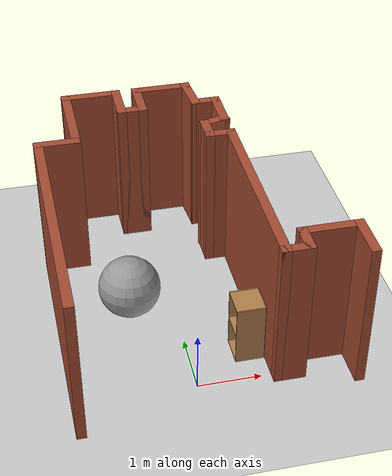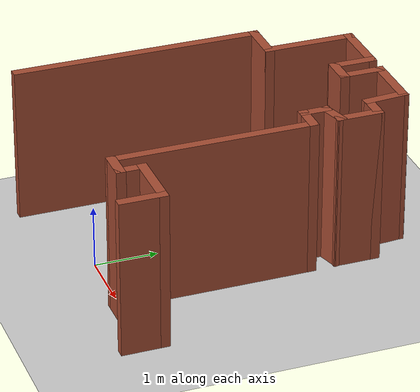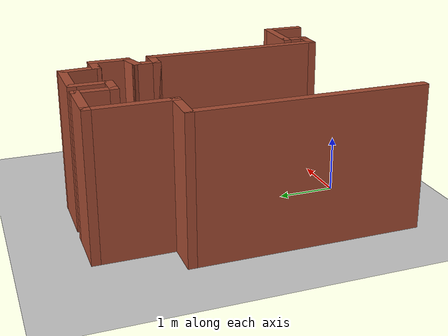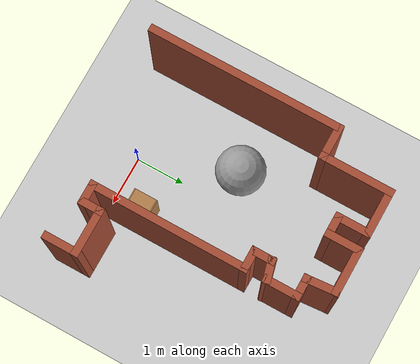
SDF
<sdf version="1.6">
 <world name="default">
  <model name="ground_plane">
   <static>1</static>
   <link name="link">
    <collision name="collision">
     <geometry><plane><normal>0 0 1</normal><size>100 100</size></plane></geometry>
     <surface><friction><ode><mu>100</mu><mu2>50</mu2></ode></friction></surface>
    </collision>
    <visual name="visual">
     <cast_shadows>0</cast_shadows>
     <geometry><plane><normal>0 0 1</normal><size>100 100</size></plane></geometry>
     <material>
      <script><uri>file://media/materials/scripts/gazebo.material</uri><name>Gazebo/Grey</name></script>
     </material>
    </visual>
   </link>
  </model>
  <model name="map_40">
   <link name="Wall_0">
    <pose>-1 5.72202 0 0 -0 3.14159</pose>
    <visual name="Wall_0_Visual">
     <pose>0 0 1.25 0 -0 0</pose>
     <geometry><box><size>1 0.15 2.5</size></box></geometry>
     <material>
      <script><uri>file://media/materials/scripts/gazebo.material</uri><name>Gazebo/Bricks</name></script>
      <ambient>1 1 1 1</ambient>
      <shader type="pixel"/>
     </material>
     <meta><layer>0</layer></meta>
    </visual>
    <collision name="Wall_0_Collision">
     <pose>0 0 1.25 0 -0 0</pose>
     <geometry><box><size>1 0.15 2.5</size></box></geometry>
     <surface>
      <friction>
       <ode><mu>1</mu><mu2>1</mu2><fdir1>0 0 0</fdir1><slip1>0</slip1><slip2>0</slip2></ode>
       <torsional>
        <coefficient>1</coefficient>
        <patch_radius>0</patch_radius>
        <surface_radius>0</surface_radius>
        <use_patch_radius>1</use_patch_radius>
        <ode><slip>0</slip></ode>
       </torsional>
      </friction>
      <bounce><restitution_coefficient>0</restitution_coefficient><threshold>1e+06</threshold></bounce>
      <contact>
       <collide_without_contact>0</collide_without_contact>
       <collide_without_contact_bitmask>1</collide_without_contact_bitmask>
       <collide_bitmask>1</collide_bitmask>
       <ode>
        <soft_cfm>0</soft_cfm>
        <soft_erp>0.2</soft_erp>
        <kp>1e+13</kp>
        <kd>1</kd>
        <max_vel>0.01</max_vel>
        <min_depth>0</min_depth>
       </ode>
       <bullet>
        <split_impulse>1</split_impulse>
        <split_impulse_penetration_threshold>-0.01</split_impulse_penetration_threshold>
        <soft_cfm>0</soft_cfm>
        <soft_erp>0.2</soft_erp>
        <kp>1e+13</kp>
        <kd>1</kd>
       </bullet>
      </contact>
     </surface>
    </collision>
   </link>
   <link name="Wall_10">
    <pose>-2.2 5.72202 0 0 -0 3.14159</pose>
    <visual name="Wall_10_Visual">
     <pose>0 0 1.25 0 -0 0</pose>
     <geometry><box><size>1 0.15 2.5</size></box></geometry>
     <material>
      <script><uri>file://media/materials/scripts/gazebo.material</uri><name>Gazebo/Bricks</name></script>
      <ambient>1 1 1 1</ambient>
      <shader type="pixel"/>
     </material>
     <meta><layer>0</layer></meta>
    </visual>
    <collision name="Wall_10_Collision">
     <pose>0 0 1.25 0 -0 0</pose>
     <geometry><box><size>1 0.15 2.5</size></box></geometry>
     <surface>
      <friction>
       <ode><mu>1</mu><mu2>1</mu2><fdir1>0 0 0</fdir1><slip1>0</slip1><slip2>0</slip2></ode>
       <torsional>
        <coefficient>1</coefficient>
        <patch_radius>0</patch_radius>
        <surface_radius>0</surface_radius>
        <use_patch_radius>1</use_patch_radius>
        <ode><slip>0</slip></ode>
       </torsional>
      </friction>
      <bounce><restitution_coefficient>0</restitution_coefficient><threshold>1e+06</threshold></bounce>
      <contact>
       <collide_without_contact>0</collide_without_contact>
       <collide_without_contact_bitmask>1</collide_without_contact_bitmask>
       <collide_bitmask>1</collide_bitmask>
       <ode>
        <soft_cfm>0</soft_cfm>
        <soft_erp>0.2</soft_erp>
        <kp>1e+13</kp>
        <kd>1</kd>
        <max_vel>0.01</max_vel>
        <min_depth>0</min_depth>
       </ode>
       <bullet>
        <split_impulse>1</split_impulse>
        <split_impulse_penetration_threshold>-0.01</split_impulse_penetration_threshold>
        <soft_cfm>0</soft_cfm>
        <soft_erp>0.2</soft_erp>
        <kp>1e+13</kp>
        <kd>1</kd>
       </bullet>
      </contact>
     </surface>
    </collision>
   </link>
   <link name="Wall_11">
    <pose>-2.625 5.04702 0 0 0 -1.5708</pose>
    <visual name="Wall_11_Visual">
     <pose>0 0 1.25 0 -0 0</pose>
     <geometry><box><size>1.5 0.15 2.5</size></box></geometry>
     <material>
      <script><uri>file://media/materials/scripts/gazebo.material</uri><name>Gazebo/Bricks</name></script>
      <ambient>1 1 1 1</ambient>
      <shader type="pixel"/>
     </material>
     <meta><layer>0</layer></meta>
    </visual>
    <collision name="Wall_11_Collision">
     <pose>0 0 1.25 0 -0 0</pose>
     <geometry><box><size>1.5 0.15 2.5</size></box></geometry>
     <surface>
      <friction>
       <ode><mu>1</mu><mu2>1</mu2><fdir1>0 0 0</fdir1><slip1>0</slip1><slip2>0</slip2></ode>
       <torsional>
        <coefficient>1</coefficient>
        <patch_radius>0</patch_radius>
        <surface_radius>0</surface_radius>
        <use_patch_radius>1</use_patch_radius>
        <ode><slip>0</slip></ode>
       </torsional>
      </friction>
      <bounce><restitution_coefficient>0</restitution_coefficient><threshold>1e+06</threshold></bounce>
      <contact>
       <collide_without_contact>0</collide_without_contact>
       <collide_without_contact_bitmask>1</collide_without_contact_bitmask>
       <collide_bitmask>1</collide_bitmask>
       <ode>
        <soft_cfm>0</soft_cfm>
        <soft_erp>0.2</soft_erp>
        <kp>1e+13</kp>
        <kd>1</kd>
        <max_vel>0.01</max_vel>
        <min_depth>0</min_depth>
       </ode>
       <bullet>
        <split_impulse>1</split_impulse>
        <split_impulse_penetration_threshold>-0.01</split_impulse_penetration_threshold>
        <soft_cfm>0</soft_cfm>
        <soft_erp>0.2</soft_erp>
        <kp>1e+13</kp>
        <kd>1</kd>
       </bullet>
      </contact>
     </surface>
    </collision>
   </link>
   <link name="Wall_12">
    <pose>-2.925 4.37202 0 0 -0 3.14159</pose>
    <visual name="Wall_12_Visual">
     <pose>0 0 1.25 0 -0 0</pose>
     <geometry><box><size>0.75 0.15 2.5</size></box></geometry>
     <material>
      <script><uri>file://media/materials/scripts/gazebo.material</uri><name>Gazebo/Bricks</name></script>
      <ambient>1 1 1 1</ambient>
      <shader type="pixel"/>
     </material>
     <meta><layer>0</layer></meta>
    </visual>
    <collision name="Wall_12_Collision">
     <pose>0 0 1.25 0 -0 0</pose>
     <geometry><box><size>0.75 0.15 2.5</size></box></geometry>
     <surface>
      <friction>
       <ode><mu>1</mu><mu2>1</mu2><fdir1>0 0 0</fdir1><slip1>0</slip1><slip2>0</slip2></ode>
       <torsional>
        <coefficient>1</coefficient>
        <patch_radius>0</patch_radius>
        <surface_radius>0</surface_radius>
        <use_patch_radius>1</use_patch_radius>
        <ode><slip>0</slip></ode>
       </torsional>
      </friction>
      <bounce><restitution_coefficient>0</restitution_coefficient><threshold>1e+06</threshold></bounce>
      <contact>
       <collide_without_contact>0</collide_without_contact>
       <collide_without_contact_bitmask>1</collide_without_contact_bitmask>
       <collide_bitmask>1</collide_bitmask>
       <ode>
        <soft_cfm>0</soft_cfm>
        <soft_erp>0.2</soft_erp>
        <kp>1e+13</kp>
        <kd>1</kd>
        <max_vel>0.01</max_vel>
        <min_depth>0</min_depth>
       </ode>
       <bullet>
        <split_impulse>1</split_impulse>
        <split_impulse_penetration_threshold>-0.01</split_impulse_penetration_threshold>
        <soft_cfm>0</soft_cfm>
        <soft_erp>0.2</soft_erp>
        <kp>1e+13</kp>
        <kd>1</kd>
       </bullet>
      </contact>
     </surface>
    </collision>
   </link>
   <link name="Wall_13">
    <pose>-3.225 2.44702 0 0 0 -1.5708</pose>
    <visual name="Wall_13_Visual">
     <pose>0 0 1.25 0 -0 0</pose>
     <geometry><box><size>4 0.15 2.5</size></box></geometry>
     <material>
      <script><uri>file://media/materials/scripts/gazebo.material</uri><name>Gazebo/Bricks</name></script>
      <ambient>1 1 1 1</ambient>
      <shader type="pixel"/>
     </material>
     <meta><layer>0</layer></meta>
    </visual>
    <collision name="Wall_13_Collision">
     <pose>0 0 1.25 0 -0 0</pose>
     <geometry><box><size>4 0.15 2.5</size></box></geometry>
     <surface>
      <friction>
       <ode><mu>1</mu><mu2>1</mu2><fdir1>0 0 0</fdir1><slip1>0</slip1><slip2>0</slip2></ode>
       <torsional>
        <coefficient>1</coefficient>
        <patch_radius>0</patch_radius>
        <surface_radius>0</surface_radius>
        <use_patch_radius>1</use_patch_radius>
        <ode><slip>0</slip></ode>
       </torsional>
      </friction>
      <bounce><restitution_coefficient>0</restitution_coefficient><threshold>1e+06</threshold></bounce>
      <contact>
       <collide_without_contact>0</collide_without_contact>
       <collide_without_contact_bitmask>1</collide_without_contact_bitmask>
       <collide_bitmask>1</collide_bitmask>
       <ode>
        <soft_cfm>0</soft_cfm>
        <soft_erp>0.2</soft_erp>
        <kp>1e+13</kp>
        <kd>1</kd>
        <max_vel>0.01</max_vel>
        <min_depth>0</min_depth>
       </ode>
       <bullet>
        <split_impulse>1</split_impulse>
        <split_impulse_penetration_threshold>-0.01</split_impulse_penetration_threshold>
        <soft_cfm>0</soft_cfm>
        <soft_erp>0.2</soft_erp>
        <kp>1e+13</kp>
        <kd>1</kd>
       </bullet>
      </contact>
     </surface>
    </collision>
   </link>
   <link name="Wall_3">
    <pose>-1.425 5.42202 0 0 0 -1.5708</pose>
    <visual name="Wall_3_Visual">
     <pose>0 0 1.25 0 -0 0</pose>
     <geometry><box><size>0.75 0.15 2.5</size></box></geometry>
     <material>
      <script><uri>file://media/materials/scripts/gazebo.material</uri><name>Gazebo/Bricks</name></script>
      <ambient>1 1 1 1</ambient>
      <shader type="pixel"/>
     </material>
     <meta><layer>0</layer></meta>
    </visual>
    <collision name="Wall_3_Collision">
     <pose>0 0 1.25 0 -0 0</pose>
     <geometry><box><size>0.75 0.15 2.5</size></box></geometry>
     <surface>
      <friction>
       <ode><mu>1</mu><mu2>1</mu2><fdir1>0 0 0</fdir1><slip1>0</slip1><slip2>0</slip2></ode>
       <torsional>
        <coefficient>1</coefficient>
        <patch_radius>0</patch_radius>
        <surface_radius>0</surface_radius>
        <use_patch_radius>1</use_patch_radius>
        <ode><slip>0</slip></ode>
       </torsional>
      </friction>
      <bounce><restitution_coefficient>0</restitution_coefficient><threshold>1e+06</threshold></bounce>
      <contact>
       <collide_without_contact>0</collide_without_contact>
       <collide_without_contact_bitmask>1</collide_without_contact_bitmask>
       <collide_bitmask>1</collide_bitmask>
       <ode>
        <soft_cfm>0</soft_cfm>
        <soft_erp>0.2</soft_erp>
        <kp>1e+13</kp>
        <kd>1</kd>
        <max_vel>0.01</max_vel>
        <min_depth>0</min_depth>
       </ode>
       <bullet>
        <split_impulse>1</split_impulse>
        <split_impulse_penetration_threshold>-0.01</split_impulse_penetration_threshold>
        <soft_cfm>0</soft_cfm>
        <soft_erp>0.2</soft_erp>
        <kp>1e+13</kp>
        <kd>1</kd>
       </bullet>
      </contact>
     </surface>
    </collision>
   </link>
   <link name="Wall_4">
    <pose>-1.6 5.12202 0 0 -0 3.14159</pose>
    <visual name="Wall_4_Visual">
     <pose>0 0 1.25 0 -0 0</pose>
     <geometry><box><size>0.5 0.15 2.5</size></box></geometry>
     <material>
      <script><uri>file://media/materials/scripts/gazebo.material</uri><name>Gazebo/Bricks</name></script>
      <ambient>1 1 1 1</ambient>
      <shader type="pixel"/>
     </material>
     <meta><layer>0</layer></meta>
    </visual>
    <collision name="Wall_4_Collision">
     <pose>0 0 1.25 0 -0 0</pose>
     <geometry><box><size>0.5 0.15 2.5</size></box></geometry>
     <surface>
      <friction>
       <ode><mu>1</mu><mu2>1</mu2><fdir1>0 0 0</fdir1><slip1>0</slip1><slip2>0</slip2></ode>
       <torsional>
        <coefficient>1</coefficient>
        <patch_radius>0</patch_radius>
        <surface_radius>0</surface_radius>
        <use_patch_radius>1</use_patch_radius>
        <ode><slip>0</slip></ode>
       </torsional>
      </friction>
      <bounce><restitution_coefficient>0</restitution_coefficient><threshold>1e+06</threshold></bounce>
      <contact>
       <collide_without_contact>0</collide_without_contact>
       <collide_without_contact_bitmask>1</collide_without_contact_bitmask>
       <collide_bitmask>1</collide_bitmask>
       <ode>
        <soft_cfm>0</soft_cfm>
        <soft_erp>0.2</soft_erp>
        <kp>1e+13</kp>
        <kd>1</kd>
        <max_vel>0.01</max_vel>
        <min_depth>0</min_depth>
       </ode>
       <bullet>
        <split_impulse>1</split_impulse>
        <split_impulse_penetration_threshold>-0.01</split_impulse_penetration_threshold>
        <soft_cfm>0</soft_cfm>
        <soft_erp>0.2</soft_erp>
        <kp>1e+13</kp>
        <kd>1</kd>
       </bullet>
      </contact>
     </surface>
    </collision>
   </link>
   <link name="Wall_56">
    <pose>1.03441 1.0601 0 0 -0 1.5708</pose>
    <visual name="Wall_56_Visual">
     <pose>0 0 1.25 0 -0 0</pose>
     <geometry><box><size>0.75 0.15 2.5</size></box></geometry>
     <material>
      <script><uri>file://media/materials/scripts/gazebo.material</uri><name>Gazebo/Bricks</name></script>
      <ambient>1 1 1 1</ambient>
      <shader type="pixel"/>
     </material>
     <meta><layer>0</layer></meta>
    </visual>
    <collision name="Wall_56_Collision">
     <pose>0 0 1.25 0 -0 0</pose>
     <geometry><box><size>0.75 0.15 2.5</size></box></geometry>
     <surface>
      <friction>
       <ode><mu>1</mu><mu2>1</mu2><fdir1>0 0 0</fdir1><slip1>0</slip1><slip2>0</slip2></ode>
       <torsional>
        <coefficient>1</coefficient>
        <patch_radius>0</patch_radius>
        <surface_radius>0</surface_radius>
        <use_patch_radius>1</use_patch_radius>
        <ode><slip>0</slip></ode>
       </torsional>
      </friction>
      <bounce><restitution_coefficient>0</restitution_coefficient><threshold>1e+06</threshold></bounce>
      <contact>
       <collide_without_contact>0</collide_without_contact>
       <collide_without_contact_bitmask>1</collide_without_contact_bitmask>
       <collide_bitmask>1</collide_bitmask>
       <ode>
        <soft_cfm>0</soft_cfm>
        <soft_erp>0.2</soft_erp>
        <kp>1e+13</kp>
        <kd>1</kd>
        <max_vel>0.01</max_vel>
        <min_depth>0</min_depth>
       </ode>
       <bullet>
        <split_impulse>1</split_impulse>
        <split_impulse_penetration_threshold>-0.01</split_impulse_penetration_threshold>
        <soft_cfm>0</soft_cfm>
        <soft_erp>0.2</soft_erp>
        <kp>1e+13</kp>
        <kd>1</kd>
       </bullet>
      </contact>
     </surface>
    </collision>
   </link>
   <link name="Wall_57">
    <pose>0.609413 1.3601 0 0 -0 3.14159</pose>
    <visual name="Wall_57_Visual">
     <pose>0 0 1.25 0 -0 0</pose>
     <geometry><box><size>1 0.15 2.5</size></box></geometry>
     <material>
      <script><uri>file://media/materials/scripts/gazebo.material</uri><name>Gazebo/Bricks</name></script>
      <ambient>1 1 1 1</ambient>
      <shader type="pixel"/>
     </material>
     <meta><layer>0</layer></meta>
    </visual>
    <collision name="Wall_57_Collision">
     <pose>0 0 1.25 0 -0 0</pose>
     <geometry><box><size>1 0.15 2.5</size></box></geometry>
     <surface>
      <friction>
       <ode><mu>1</mu><mu2>1</mu2><fdir1>0 0 0</fdir1><slip1>0</slip1><slip2>0</slip2></ode>
       <torsional>
        <coefficient>1</coefficient>
        <patch_radius>0</patch_radius>
        <surface_radius>0</surface_radius>
        <use_patch_radius>1</use_patch_radius>
        <ode><slip>0</slip></ode>
       </torsional>
      </friction>
      <bounce><restitution_coefficient>0</restitution_coefficient><threshold>1e+06</threshold></bounce>
      <contact>
       <collide_without_contact>0</collide_without_contact>
       <collide_without_contact_bitmask>1</collide_without_contact_bitmask>
       <collide_bitmask>1</collide_bitmask>
       <ode>
        <soft_cfm>0</soft_cfm>
        <soft_erp>0.2</soft_erp>
        <kp>1e+13</kp>
        <kd>1</kd>
        <max_vel>0.01</max_vel>
        <min_depth>0</min_depth>
       </ode>
       <bullet>
        <split_impulse>1</split_impulse>
        <split_impulse_penetration_threshold>-0.01</split_impulse_penetration_threshold>
        <soft_cfm>0</soft_cfm>
        <soft_erp>0.2</soft_erp>
        <kp>1e+13</kp>
        <kd>1</kd>
       </bullet>
      </contact>
     </surface>
    </collision>
   </link>
   <link name="Wall_58">
    <pose>0.184413 1.1851 0 0 0 -1.5708</pose>
    <visual name="Wall_58_Visual">
     <pose>0 0 1.25 0 -0 0</pose>
     <geometry><box><size>0.5 0.15 2.5</size></box></geometry>
     <material>
      <script><uri>file://media/materials/scripts/gazebo.material</uri><name>Gazebo/Bricks</name></script>
      <ambient>1 1 1 1</ambient>
      <shader type="pixel"/>
     </material>
     <meta><layer>0</layer></meta>
    </visual>
    <collision name="Wall_58_Collision">
     <pose>0 0 1.25 0 -0 0</pose>
     <geometry><box><size>0.5 0.15 2.5</size></box></geometry>
     <surface>
      <friction>
       <ode><mu>1</mu><mu2>1</mu2><fdir1>0 0 0</fdir1><slip1>0</slip1><slip2>0</slip2></ode>
       <torsional>
        <coefficient>1</coefficient>
        <patch_radius>0</patch_radius>
        <surface_radius>0</surface_radius>
        <use_patch_radius>1</use_patch_radius>
        <ode><slip>0</slip></ode>
       </torsional>
      </friction>
      <bounce><restitution_coefficient>0</restitution_coefficient><threshold>1e+06</threshold></bounce>
      <contact>
       <collide_without_contact>0</collide_without_contact>
       <collide_without_contact_bitmask>1</collide_without_contact_bitmask>
       <collide_bitmask>1</collide_bitmask>
       <ode>
        <soft_cfm>0</soft_cfm>
        <soft_erp>0.2</soft_erp>
        <kp>1e+13</kp>
        <kd>1</kd>
        <max_vel>0.01</max_vel>
        <min_depth>0</min_depth>
       </ode>
       <bullet>
        <split_impulse>1</split_impulse>
        <split_impulse_penetration_threshold>-0.01</split_impulse_penetration_threshold>
        <soft_cfm>0</soft_cfm>
        <soft_erp>0.2</soft_erp>
        <kp>1e+13</kp>
        <kd>1</kd>
       </bullet>
      </contact>
     </surface>
    </collision>
   </link>
   <link name="Wall_59">
    <pose>0.009413 1.0101 0 0 -0 3.14159</pose>
    <visual name="Wall_59_Visual">
     <pose>0 0 1.25 0 -0 0</pose>
     <geometry><box><size>0.5 0.15 2.5</size></box></geometry>
     <material>
      <script><uri>file://media/materials/scripts/gazebo.material</uri><name>Gazebo/Bricks</name></script>
      <ambient>1 1 1 1</ambient>
      <shader type="pixel"/>
     </material>
     <meta><layer>0</layer></meta>
    </visual>
    <collision name="Wall_59_Collision">
     <pose>0 0 1.25 0 -0 0</pose>
     <geometry><box><size>0.5 0.15 2.5</size></box></geometry>
     <surface>
      <friction>
       <ode><mu>1</mu><mu2>1</mu2><fdir1>0 0 0</fdir1><slip1>0</slip1><slip2>0</slip2></ode>
       <torsional>
        <coefficient>1</coefficient>
        <patch_radius>0</patch_radius>
        <surface_radius>0</surface_radius>
        <use_patch_radius>1</use_patch_radius>
        <ode><slip>0</slip></ode>
       </torsional>
      </friction>
      <bounce><restitution_coefficient>0</restitution_coefficient><threshold>1e+06</threshold></bounce>
      <contact>
       <collide_without_contact>0</collide_without_contact>
       <collide_without_contact_bitmask>1</collide_without_contact_bitmask>
       <collide_bitmask>1</collide_bitmask>
       <ode>
        <soft_cfm>0</soft_cfm>
        <soft_erp>0.2</soft_erp>
        <kp>1e+13</kp>
        <kd>1</kd>
        <max_vel>0.01</max_vel>
        <min_depth>0</min_depth>
       </ode>
       <bullet>
        <split_impulse>1</split_impulse>
        <split_impulse_penetration_threshold>-0.01</split_impulse_penetration_threshold>
        <soft_cfm>0</soft_cfm>
        <soft_erp>0.2</soft_erp>
        <kp>1e+13</kp>
        <kd>1</kd>
       </bullet>
      </contact>
     </surface>
    </collision>
   </link>
   <link name="Wall_60">
    <pose>-0.165587 2.5601 0 0 -0 1.5708</pose>
    <visual name="Wall_60_Visual">
     <pose>0 0 1.25 0 -0 0</pose>
     <geometry><box><size>3.25 0.15 2.5</size></box></geometry>
     <material>
      <script><uri>file://media/materials/scripts/gazebo.material</uri><name>Gazebo/Bricks</name></script>
      <ambient>1 1 1 1</ambient>
      <shader type="pixel"/>
     </material>
     <meta><layer>0</layer></meta>
    </visual>
    <collision name="Wall_60_Collision">
     <pose>0 0 1.25 0 -0 0</pose>
     <geometry><box><size>3.25 0.15 2.5</size></box></geometry>
     <surface>
      <friction>
       <ode><mu>1</mu><mu2>1</mu2><fdir1>0 0 0</fdir1><slip1>0</slip1><slip2>0</slip2></ode>
       <torsional>
        <coefficient>1</coefficient>
        <patch_radius>0</patch_radius>
        <surface_radius>0</surface_radius>
        <use_patch_radius>1</use_patch_radius>
        <ode><slip>0</slip></ode>
       </torsional>
      </friction>
      <bounce><restitution_coefficient>0</restitution_coefficient><threshold>1e+06</threshold></bounce>
      <contact>
       <collide_without_contact>0</collide_without_contact>
       <collide_without_contact_bitmask>1</collide_without_contact_bitmask>
       <collide_bitmask>1</collide_bitmask>
       <ode>
        <soft_cfm>0</soft_cfm>
        <soft_erp>0.2</soft_erp>
        <kp>1e+13</kp>
        <kd>1</kd>
        <max_vel>0.01</max_vel>
        <min_depth>0</min_depth>
       </ode>
       <bullet>
        <split_impulse>1</split_impulse>
        <split_impulse_penetration_threshold>-0.01</split_impulse_penetration_threshold>
        <soft_cfm>0</soft_cfm>
        <soft_erp>0.2</soft_erp>
        <kp>1e+13</kp>
        <kd>1</kd>
       </bullet>
      </contact>
     </surface>
    </collision>
   </link>
   <link name="Wall_61">
    <pose>-0.340587 4.1101 0 0 -0 3.14159</pose>
    <visual name="Wall_61_Visual">
     <pose>0 0 1.25 0 -0 0</pose>
     <geometry><box><size>0.5 0.15 2.5</size></box></geometry>
     <material>
      <script><uri>file://media/materials/scripts/gazebo.material</uri><name>Gazebo/Bricks</name></script>
      <ambient>1 1 1 1</ambient>
      <shader type="pixel"/>
     </material>
     <meta><layer>0</layer></meta>
    </visual>
    <collision name="Wall_61_Collision">
     <pose>0 0 1.25 0 -0 0</pose>
     <geometry><box><size>0.5 0.15 2.5</size></box></geometry>
     <surface>
      <friction>
       <ode><mu>1</mu><mu2>1</mu2><fdir1>0 0 0</fdir1><slip1>0</slip1><slip2>0</slip2></ode>
       <torsional>
        <coefficient>1</coefficient>
        <patch_radius>0</patch_radius>
        <surface_radius>0</surface_radius>
        <use_patch_radius>1</use_patch_radius>
        <ode><slip>0</slip></ode>
       </torsional>
      </friction>
      <bounce><restitution_coefficient>0</restitution_coefficient><threshold>1e+06</threshold></bounce>
      <contact>
       <collide_without_contact>0</collide_without_contact>
       <collide_without_contact_bitmask>1</collide_without_contact_bitmask>
       <collide_bitmask>1</collide_bitmask>
       <ode>
        <soft_cfm>0</soft_cfm>
        <soft_erp>0.2</soft_erp>
        <kp>1e+13</kp>
        <kd>1</kd>
        <max_vel>0.01</max_vel>
        <min_depth>0</min_depth>
       </ode>
       <bullet>
        <split_impulse>1</split_impulse>
        <split_impulse_penetration_threshold>-0.01</split_impulse_penetration_threshold>
        <soft_cfm>0</soft_cfm>
        <soft_erp>0.2</soft_erp>
        <kp>1e+13</kp>
        <kd>1</kd>
       </bullet>
      </contact>
     </surface>
    </collision>
   </link>
   <link name="Wall_62">
    <pose>-0.515587 4.2851 0 0 -0 1.5708</pose>
    <visual name="Wall_62_Visual">
     <pose>0 0 1.25 0 -0 0</pose>
     <geometry><box><size>0.5 0.15 2.5</size></box></geometry>
     <material>
      <script><uri>file://media/materials/scripts/gazebo.material</uri><name>Gazebo/Bricks</name></script>
      <ambient>1 1 1 1</ambient>
      <shader type="pixel"/>
     </material>
     <meta><layer>0</layer></meta>
    </visual>
    <collision name="Wall_62_Collision">
     <pose>0 0 1.25 0 -0 0</pose>
     <geometry><box><size>0.5 0.15 2.5</size></box></geometry>
     <surface>
      <friction>
       <ode><mu>1</mu><mu2>1</mu2><fdir1>0 0 0</fdir1><slip1>0</slip1><slip2>0</slip2></ode>
       <torsional>
        <coefficient>1</coefficient>
        <patch_radius>0</patch_radius>
        <surface_radius>0</surface_radius>
        <use_patch_radius>1</use_patch_radius>
        <ode><slip>0</slip></ode>
       </torsional>
      </friction>
      <bounce><restitution_coefficient>0</restitution_coefficient><threshold>1e+06</threshold></bounce>
      <contact>
       <collide_without_contact>0</collide_without_contact>
       <collide_without_contact_bitmask>1</collide_without_contact_bitmask>
       <collide_bitmask>1</collide_bitmask>
       <ode>
        <soft_cfm>0</soft_cfm>
        <soft_erp>0.2</soft_erp>
        <kp>1e+13</kp>
        <kd>1</kd>
        <max_vel>0.01</max_vel>
        <min_depth>0</min_depth>
       </ode>
       <bullet>
        <split_impulse>1</split_impulse>
        <split_impulse_penetration_threshold>-0.01</split_impulse_penetration_threshold>
        <soft_cfm>0</soft_cfm>
        <soft_erp>0.2</soft_erp>
        <kp>1e+13</kp>
        <kd>1</kd>
       </bullet>
      </contact>
     </surface>
    </collision>
   </link>
   <link name="Wall_63">
    <pose>-0.34655 4.50539 0 0 -0 0.261799</pose>
    <visual name="Wall_63_Visual">
     <pose>0 0 1.25 0 -0 0</pose>
     <geometry><box><size>0.5 0.15 2.5</size></box></geometry>
     <material>
      <script><uri>file://media/materials/scripts/gazebo.material</uri><name>Gazebo/Bricks</name></script>
      <ambient>1 1 1 1</ambient>
      <shader type="pixel"/>
     </material>
     <meta><layer>0</layer></meta>
    </visual>
    <collision name="Wall_63_Collision">
     <pose>0 0 1.25 0 -0 0</pose>
     <geometry><box><size>0.5 0.15 2.5</size></box></geometry>
     <surface>
      <friction>
       <ode><mu>1</mu><mu2>1</mu2><fdir1>0 0 0</fdir1><slip1>0</slip1><slip2>0</slip2></ode>
       <torsional>
        <coefficient>1</coefficient>
        <patch_radius>0</patch_radius>
        <surface_radius>0</surface_radius>
        <use_patch_radius>1</use_patch_radius>
        <ode><slip>0</slip></ode>
       </torsional>
      </friction>
      <bounce><restitution_coefficient>0</restitution_coefficient><threshold>1e+06</threshold></bounce>
      <contact>
       <collide_without_contact>0</collide_without_contact>
       <collide_without_contact_bitmask>1</collide_without_contact_bitmask>
       <collide_bitmask>1</collide_bitmask>
       <ode>
        <soft_cfm>0</soft_cfm>
        <soft_erp>0.2</soft_erp>
        <kp>1e+13</kp>
        <kd>1</kd>
        <max_vel>0.01</max_vel>
        <min_depth>0</min_depth>
       </ode>
       <bullet>
        <split_impulse>1</split_impulse>
        <split_impulse_penetration_threshold>-0.01</split_impulse_penetration_threshold>
        <soft_cfm>0</soft_cfm>
        <soft_erp>0.2</soft_erp>
        <kp>1e+13</kp>
        <kd>1</kd>
       </bullet>
      </contact>
     </surface>
    </collision>
   </link>
   <link name="Wall_64">
    <pose>-0.177513 4.85068 0 0 -0 1.5708</pose>
    <visual name="Wall_64_Visual">
     <pose>0 0 1.25 0 -0 0</pose>
     <geometry><box><size>0.75 0.15 2.5</size></box></geometry>
     <material>
      <script><uri>file://media/materials/scripts/gazebo.material</uri><name>Gazebo/Bricks</name></script>
      <ambient>1 1 1 1</ambient>
      <shader type="pixel"/>
     </material>
     <meta><layer>0</layer></meta>
    </visual>
    <collision name="Wall_64_Collision">
     <pose>0 0 1.25 0 -0 0</pose>
     <geometry><box><size>0.75 0.15 2.5</size></box></geometry>
     <surface>
      <friction>
       <ode><mu>1</mu><mu2>1</mu2><fdir1>0 0 0</fdir1><slip1>0</slip1><slip2>0</slip2></ode>
       <torsional>
        <coefficient>1</coefficient>
        <patch_radius>0</patch_radius>
        <surface_radius>0</surface_radius>
        <use_patch_radius>1</use_patch_radius>
        <ode><slip>0</slip></ode>
       </torsional>
      </friction>
      <bounce><restitution_coefficient>0</restitution_coefficient><threshold>1e+06</threshold></bounce>
      <contact>
       <collide_without_contact>0</collide_without_contact>
       <collide_without_contact_bitmask>1</collide_without_contact_bitmask>
       <collide_bitmask>1</collide_bitmask>
       <ode>
        <soft_cfm>0</soft_cfm>
        <soft_erp>0.2</soft_erp>
        <kp>1e+13</kp>
        <kd>1</kd>
        <max_vel>0.01</max_vel>
        <min_depth>0</min_depth>
       </ode>
       <bullet>
        <split_impulse>1</split_impulse>
        <split_impulse_penetration_threshold>-0.01</split_impulse_penetration_threshold>
        <soft_cfm>0</soft_cfm>
        <soft_erp>0.2</soft_erp>
        <kp>1e+13</kp>
        <kd>1</kd>
       </bullet>
      </contact>
     </surface>
    </collision>
   </link>
   <link name="Wall_65">
    <pose>-0.352513 5.15068 0 0 -0 3.14159</pose>
    <visual name="Wall_65_Visual">
     <pose>0 0 1.25 0 -0 0</pose>
     <geometry><box><size>0.5 0.15 2.5</size></box></geometry>
     <material>
      <script><uri>file://media/materials/scripts/gazebo.material</uri><name>Gazebo/Bricks</name></script>
      <ambient>1 1 1 1</ambient>
      <shader type="pixel"/>
     </material>
     <meta><layer>0</layer></meta>
    </visual>
    <collision name="Wall_65_Collision">
     <pose>0 0 1.25 0 -0 0</pose>
     <geometry><box><size>0.5 0.15 2.5</size></box></geometry>
     <surface>
      <friction>
       <ode><mu>1</mu><mu2>1</mu2><fdir1>0 0 0</fdir1><slip1>0</slip1><slip2>0</slip2></ode>
       <torsional>
        <coefficient>1</coefficient>
        <patch_radius>0</patch_radius>
        <surface_radius>0</surface_radius>
        <use_patch_radius>1</use_patch_radius>
        <ode><slip>0</slip></ode>
       </torsional>
      </friction>
      <bounce><restitution_coefficient>0</restitution_coefficient><threshold>1e+06</threshold></bounce>
      <contact>
       <collide_without_contact>0</collide_without_contact>
       <collide_without_contact_bitmask>1</collide_without_contact_bitmask>
       <collide_bitmask>1</collide_bitmask>
       <ode>
        <soft_cfm>0</soft_cfm>
        <soft_erp>0.2</soft_erp>
        <kp>1e+13</kp>
        <kd>1</kd>
        <max_vel>0.01</max_vel>
        <min_depth>0</min_depth>
       </ode>
       <bullet>
        <split_impulse>1</split_impulse>
        <split_impulse_penetration_threshold>-0.01</split_impulse_penetration_threshold>
        <soft_cfm>0</soft_cfm>
        <soft_erp>0.2</soft_erp>
        <kp>1e+13</kp>
        <kd>1</kd>
       </bullet>
      </contact>
     </surface>
    </collision>
   </link>
   <link name="Wall_66">
    <pose>-0.551256 5.43635 0 0 -0 1.65372</pose>
    <visual name="Wall_66_Visual">
     <pose>0 0 1.25 0 -0 0</pose>
     <geometry><box><size>0.723309 0.15 2.5</size></box></geometry>
     <material>
      <script><uri>file://media/materials/scripts/gazebo.material</uri><name>Gazebo/Bricks</name></script>
      <ambient>1 1 1 1</ambient>
      <shader type="pixel"/>
     </material>
     <meta><layer>0</layer></meta>
    </visual>
    <collision name="Wall_66_Collision">
     <pose>0 0 1.25 0 -0 0</pose>
     <geometry><box><size>0.723309 0.15 2.5</size></box></geometry>
     <surface>
      <friction>
       <ode><mu>1</mu><mu2>1</mu2><fdir1>0 0 0</fdir1><slip1>0</slip1><slip2>0</slip2></ode>
       <torsional>
        <coefficient>1</coefficient>
        <patch_radius>0</patch_radius>
        <surface_radius>0</surface_radius>
        <use_patch_radius>1</use_patch_radius>
        <ode><slip>0</slip></ode>
       </torsional>
      </friction>
      <bounce><restitution_coefficient>0</restitution_coefficient><threshold>1e+06</threshold></bounce>
      <contact>
       <collide_without_contact>0</collide_without_contact>
       <collide_without_contact_bitmask>1</collide_without_contact_bitmask>
       <collide_bitmask>1</collide_bitmask>
       <ode>
        <soft_cfm>0</soft_cfm>
        <soft_erp>0.2</soft_erp>
        <kp>1e+13</kp>
        <kd>1</kd>
        <max_vel>0.01</max_vel>
        <min_depth>0</min_depth>
       </ode>
       <bullet>
        <split_impulse>1</split_impulse>
        <split_impulse_penetration_threshold>-0.01</split_impulse_penetration_threshold>
        <soft_cfm>0</soft_cfm>
        <soft_erp>0.2</soft_erp>
        <kp>1e+13</kp>
        <kd>1</kd>
       </bullet>
      </contact>
     </surface>
    </collision>
   </link>
   <link name="Wall_7">
    <pose>-1.775 5.42202 0 0 -0 1.5708</pose>
    <visual name="Wall_7_Visual">
     <pose>0 0 1.25 0 -0 0</pose>
     <geometry><box><size>0.75 0.15 2.5</size></box></geometry>
     <material>
      <script><uri>file://media/materials/scripts/gazebo.material</uri><name>Gazebo/Bricks</name></script>
      <ambient>1 1 1 1</ambient>
      <shader type="pixel"/>
     </material>
     <meta><layer>0</layer></meta>
    </visual>
    <collision name="Wall_7_Collision">
     <pose>0 0 1.25 0 -0 0</pose>
     <geometry><box><size>0.75 0.15 2.5</size></box></geometry>
     <surface>
      <friction>
       <ode><mu>1</mu><mu2>1</mu2><fdir1>0 0 0</fdir1><slip1>0</slip1><slip2>0</slip2></ode>
       <torsional>
        <coefficient>1</coefficient>
        <patch_radius>0</patch_radius>
        <surface_radius>0</surface_radius>
        <use_patch_radius>1</use_patch_radius>
        <ode><slip>0</slip></ode>
       </torsional>
      </friction>
      <bounce><restitution_coefficient>0</restitution_coefficient><threshold>1e+06</threshold></bounce>
      <contact>
       <collide_without_contact>0</collide_without_contact>
       <collide_without_contact_bitmask>1</collide_without_contact_bitmask>
       <collide_bitmask>1</collide_bitmask>
       <ode>
        <soft_cfm>0</soft_cfm>
        <soft_erp>0.2</soft_erp>
        <kp>1e+13</kp>
        <kd>1</kd>
        <max_vel>0.01</max_vel>
        <min_depth>0</min_depth>
       </ode>
       <bullet>
        <split_impulse>1</split_impulse>
        <split_impulse_penetration_threshold>-0.01</split_impulse_penetration_threshold>
        <soft_cfm>0</soft_cfm>
        <soft_erp>0.2</soft_erp>
        <kp>1e+13</kp>
        <kd>1</kd>
       </bullet>
      </contact>
     </surface>
    </collision>
   </link>
   <link name="link_0">
    <inertial>
     <mass>1</mass>
     <inertia><ixx>0.1</ixx><ixy>0</ixy><ixz>0</ixz><iyy>0.1</iyy><iyz>0</iyz><izz>0.1</izz></inertia>
    </inertial>
    <pose>-2.07764 3.01349 0.5 0 -0 0</pose>
    <visual name="visual">
     <geometry><sphere><radius>0.5</radius></sphere></geometry>
     <material>
      <lighting>1</lighting>
      <script><uri>file://media/materials/scripts/gazebo.material</uri><name>Gazebo/Grey</name></script>
      <shader type="pixel"/>
     </material>
    </visual>
    <collision name="collision">
     <geometry><sphere><radius>0.5</radius></sphere></geometry>
     <surface>
      <friction>
       <ode><mu>1</mu><mu2>1</mu2><fdir1>0 0 0</fdir1><slip1>0</slip1><slip2>0</slip2></ode>
       <torsional>
        <coefficient>1</coefficient>
        <patch_radius>0</patch_radius>
        <surface_radius>0</surface_radius>
        <use_patch_radius>1</use_patch_radius>
        <ode><slip>0</slip></ode>
       </torsional>
      </friction>
      <bounce><restitution_coefficient>0</restitution_coefficient><threshold>1e+06</threshold></bounce>
      <contact>
       <collide_without_contact>0</collide_without_contact>
       <collide_without_contact_bitmask>1</collide_without_contact_bitmask>
       <collide_bitmask>1</collide_bitmask>
       <ode>
        <soft_cfm>0</soft_cfm>
        <soft_erp>0.2</soft_erp>
        <kp>1e+13</kp>
        <kd>1</kd>
        <max_vel>0.01</max_vel>
        <min_depth>0</min_depth>
       </ode>
       <bullet>
        <split_impulse>1</split_impulse>
        <split_impulse_penetration_threshold>-0.01</split_impulse_penetration_threshold>
        <soft_cfm>0</soft_cfm>
        <soft_erp>0.2</soft_erp>
        <kp>1e+13</kp>
        <kd>1</kd>
       </bullet>
      </contact>
     </surface>
    </collision>
   </link>
   <static>1</static>
   <pose>1.38689 -1.09784 0 0 -0 0</pose>
  </model>
  <model name="cabinet">
   <static>1</static>
   <link name="cabinet_bottom_plate">
    <inertial>
     <pose>0 0 -1 0 -0 0</pose>
     <inertia><ixx>2.05</ixx><ixy>0</ixy><ixz>0</ixz><iyy>2.05</iyy><iyz>0</iyz><izz>2.05</izz></inertia>
     <mass>25</mass>
    </inertial>
    <collision name="cabinet_bottom_plate_geom">
     <pose>0 0 0.01 0 -0 0</pose>
     <geometry><box><size>0.45 0.45 0.02</size></box></geometry>
    </collision>
    <visual name="cabinet_bottom_plate_geom_visual">
     <pose>0 0 0.01 0 -0 0</pose>
     <geometry><box><size>0.45 0.45 0.02</size></box></geometry>
     <material>
      <script><uri>file://media/materials/scripts/gazebo.material</uri><name>Gazebo/Wood</name></script>
     </material>
    </visual>
    <collision name="cabinet_bottom_plate_geom_cabinet_back_plate">
     <pose>0.235 0 0.51 0 -0 0</pose>
     <geometry><box><size>0.02 0.45 1.02</size></box></geometry>
    </collision>
    <visual name="cabinet_bottom_plate_geom_cabinet_back_plate_visual">
     <pose>0.235 0 0.51 0 -0 0</pose>
     <geometry><box><size>0.02 0.45 1.02</size></box></geometry>
     <material>
      <script><uri>file://media/materials/scripts/gazebo.material</uri><name>Gazebo/Wood</name></script>
     </material>
    </visual>
    <collision name="cabinet_bottom_plate_geom_cabinet_left_plate">
     <pose>0 0.235 0.51 0 -0 0</pose>
     <geometry><box><size>0.45 0.02 1.02</size></box></geometry>
    </collision>
    <visual name="cabinet_bottom_plate_geom_cabinet_left_plate_visual">
     <pose>0 0.235 0.51 0 -0 0</pose>
     <geometry><box><size>0.45 0.02 1.02</size></box></geometry>
     <material>
      <script><uri>file://media/materials/scripts/gazebo.material</uri><name>Gazebo/Wood</name></script>
     </material>
    </visual>
    <collision name="cabinet_bottom_plate_geom_cabinet_middle_plate">
     <pose>0 0 0.51 0 -0 0</pose>
     <geometry><box><size>0.45 0.45 0.02</size></box></geometry>
    </collision>
    <visual name="cabinet_bottom_plate_geom_cabinet_middle_plate_visual">
     <pose>0 0 0.51 0 -0 0</pose>
     <geometry><box><size>0.45 0.45 0.02</size></box></geometry>
     <material>
      <script><uri>file://media/materials/scripts/gazebo.material</uri><name>Gazebo/Wood</name></script>
     </material>
    </visual>
    <collision name="cabinet_bottom_plate_geom_cabinet_right_plate">
     <pose>0 -0.235 0.51 0 -0 0</pose>
     <geometry><box><size>0.45 0.02 1.02</size></box></geometry>
    </collision>
    <visual name="cabinet_bottom_plate_geom_cabinet_right_plate_visual">
     <pose>0 -0.235 0.51 0 -0 0</pose>
     <geometry><box><size>0.45 0.02 1.02</size></box></geometry>
     <material>
      <script><uri>file://media/materials/scripts/gazebo.material</uri><name>Gazebo/Wood</name></script>
     </material>
    </visual>
    <collision name="cabinet_bottom_plate_geom_cabinet_top_plate">
     <pose>0 0 1.01 0 -0 0</pose>
     <geometry><box><size>0.45 0.45 0.02</size></box></geometry>
    </collision>
    <visual name="cabinet_bottom_plate_geom_cabinet_top_plate_visual">
     <pose>0 0 1.01 0 -0 0</pose>
     <geometry><box><size>0.45 0.45 0.02</size></box></geometry>
     <material>
      <script><uri>file://media/materials/scripts/gazebo.material</uri><name>Gazebo/Wood</name></script>
     </material>
    </visual>
   </link>
   <pose>0.909526 0.62065 0 0 -0 0</pose>
  </model>
 </world>
</sdf>
